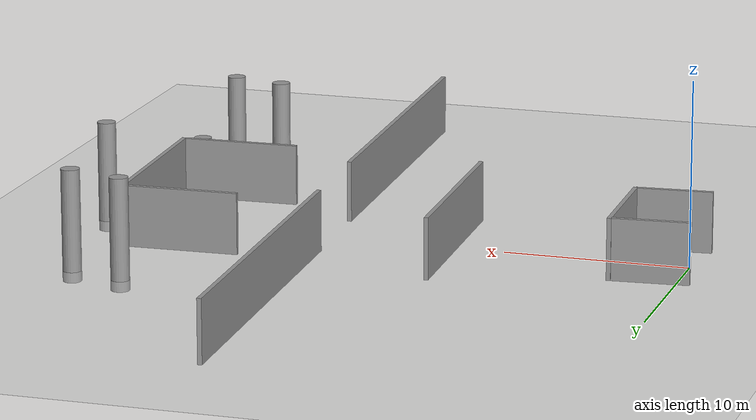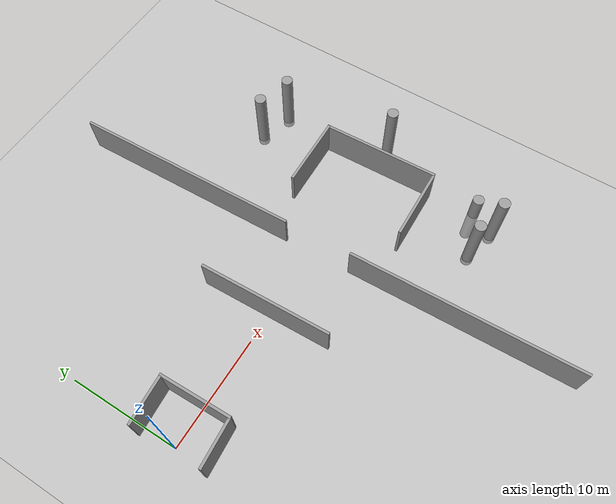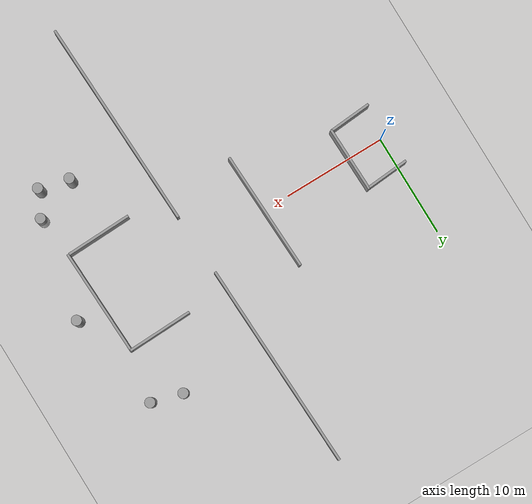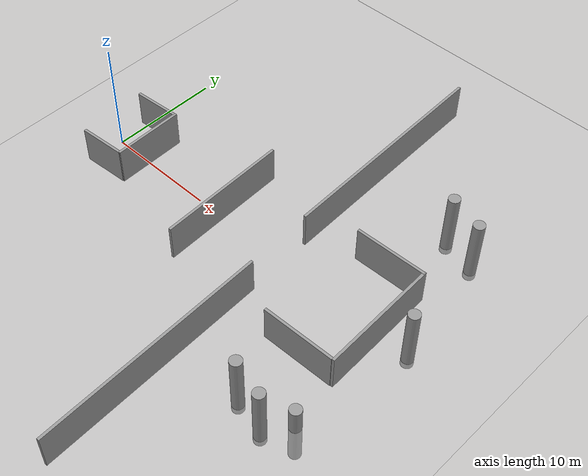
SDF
<sdf version="1.6">
 <world name="default">
  <model name="ground_plane">
   <static>1</static>
   <link name="link">
    <collision name="collision">
     <geometry><plane><normal>0 0 1</normal><size>200 200</size></plane></geometry>
     <surface><friction><ode><mu>100</mu><mu2>50</mu2></ode></friction></surface>
    </collision>
    <visual name="visual">
     <cast_shadows>0</cast_shadows>
     <geometry><plane><normal>0 0 1</normal><size>200 200</size></plane></geometry>
     <material>
      <script><uri>file://media/materials/scripts/gazebo.material</uri><name>Gazebo/Grey</name></script>
     </material>
    </visual>
    <gravity>0</gravity>
   </link>
  </model>
  <model name="unit_box_0_0_clone_0">
   <static>true</static>
   <pose>12.6891 0.242726 1.66667 -0.000226 9e-06 0.034068</pose>
   <link name="link">
    <inertial>
     <mass>1</mass>
     <inertia>
      <ixx>0.166667</ixx>
      <ixy>0</ixy>
      <ixz>0</ixz>
      <iyy>0.166667</iyy>
      <iyz>0</iyz>
      <izz>0.166667</izz>
     </inertia>
    </inertial>
    <collision name="collision">
     <geometry><box><size>0.237691 11.7788 3.33454</size></box></geometry>
     <surface><contact><collide_without_contact>1</collide_without_contact></contact></surface>
    </collision>
    <visual name="visual">
     <geometry><box><size>0.237691 11.7788 3.33454</size></box></geometry>
     <material>
      <script><name>Gazebo/Grey</name><uri>file://media/materials/scripts/gazebo.material</uri></script>
     </material>
    </visual>
    <gravity>0</gravity>
   </link>
  </model>
  <model name="unit_cylinder_0_clone_14">
   <static>true</static>
   <pose>30.4731 -9.99792 -0.733565 0 -0 0.001073</pose>
   <link name="link">
    <inertial>
     <mass>1</mass>
     <inertia><ixx>0.145833</ixx><ixy>0</ixy><ixz>0</ixz><iyy>0.145833</iyy><iyz>0</iyz><izz>0.125</izz></inertia>
    </inertial>
    <collision name="collision">
     <geometry><cylinder><radius>0.5</radius><length>6.03342</length></cylinder></geometry>
     <surface><contact><collide_without_contact>1</collide_without_contact></contact></surface>
    </collision>
    <visual name="visual">
     <geometry><cylinder><radius>0.5</radius><length>6.03342</length></cylinder></geometry>
     <material>
      <script><name>Gazebo/Grey</name><uri>file://media/materials/scripts/gazebo.material</uri></script>
     </material>
    </visual>
    <gravity>0</gravity>
   </link>
  </model>
  <model name="unit_box_0_0_clone_0_clone_clone">
   <static>true</static>
   <pose>20.034 -13.669 1.66667 -0.000226 9e-06 0.034061</pose>
   <link name="link">
    <inertial>
     <mass>1</mass>
     <inertia>
      <ixx>0.166667</ixx>
      <ixy>0</ixy>
      <ixz>0</ixz>
      <iyy>0.166667</iyy>
      <iyz>0</iyz>
      <izz>0.166667</izz>
     </inertia>
    </inertial>
    <collision name="collision">
     <geometry><box><size>0.237691 20.4927 3.33454</size></box></geometry>
     <surface><contact><collide_without_contact>1</collide_without_contact></contact></surface>
    </collision>
    <visual name="visual">
     <geometry><box><size>0.237691 20.4927 3.33454</size></box></geometry>
     <material>
      <script><name>Gazebo/Grey</name><uri>file://media/materials/scripts/gazebo.material</uri></script>
     </material>
    </visual>
    <gravity>0</gravity>
   </link>
  </model>
  <model name="unit_box_0_0_clone_0_clone_clone_0_clone">
   <static>true</static>
   <pose>29.8508 -0.508676 1.66667 -0.000226 9e-06 0.034061</pose>
   <link name="link">
    <inertial>
     <mass>1</mass>
     <inertia>
      <ixx>0.166667</ixx>
      <ixy>0</ixy>
      <ixz>0</ixz>
      <iyy>0.166667</iyy>
      <iyz>0</iyz>
      <izz>0.166667</izz>
     </inertia>
    </inertial>
    <collision name="collision">
     <geometry><box><size>0.237691 10.584 3.33454</size></box></geometry>
     <surface><contact><collide_without_contact>1</collide_without_contact></contact></surface>
    </collision>
    <visual name="visual">
     <geometry><box><size>0.237691 10.584 3.33454</size></box></geometry>
     <material>
      <script><name>Gazebo/Grey</name><uri>file://media/materials/scripts/gazebo.material</uri></script>
     </material>
    </visual>
    <gravity>0</gravity>
   </link>
  </model>
  <model name="unit_box_0_0_clone_0_clone_clone_0_clone_0">
   <static>true</static>
   <pose>26.7123 -5.83003 1.66685 8e-06 0.000226 1.60099</pose>
   <link name="link">
    <inertial>
     <mass>1</mass>
     <inertia>
      <ixx>0.166667</ixx>
      <ixy>0</ixy>
      <ixz>0</ixz>
      <iyy>0.166667</iyy>
      <iyz>0</iyz>
      <izz>0.166667</izz>
     </inertia>
    </inertial>
    <collision name="collision">
     <geometry><box><size>0.237691 6.4029 3.33454</size></box></geometry>
     <surface><contact><collide_without_contact>1</collide_without_contact></contact></surface>
    </collision>
    <visual name="visual">
     <geometry><box><size>0.237691 6.4029 3.33454</size></box></geometry>
     <material>
      <script><name>Gazebo/Grey</name><uri>file://media/materials/scripts/gazebo.material</uri></script>
     </material>
    </visual>
    <gravity>0</gravity>
   </link>
  </model>
  <model name="unit_box_0_0_clone_0_clone_clone_0_clone_clone">
   <static>true</static>
   <pose>3.56833 0.275438 1.66667 -0.000226 6e-06 0.022264</pose>
   <link name="link">
    <inertial>
     <mass>1</mass>
     <inertia>
      <ixx>0.166667</ixx>
      <ixy>0</ixy>
      <ixz>0</ixz>
      <iyy>0.166667</iyy>
      <iyz>0</iyz>
      <izz>0.166667</izz>
     </inertia>
    </inertial>
    <collision name="collision">
     <geometry><box><size>0.237691 6.40032 3.33454</size></box></geometry>
     <surface><contact><collide_without_contact>1</collide_without_contact></contact></surface>
    </collision>
    <visual name="visual">
     <geometry><box><size>0.237691 6.40032 3.33454</size></box></geometry>
     <material>
      <script><name>Gazebo/Grey</name><uri>file://media/materials/scripts/gazebo.material</uri></script>
     </material>
    </visual>
    <gravity>0</gravity>
   </link>
  </model>
  <model name="unit_cylinder_0_clone_14_clone_9">
   <static>true</static>
   <pose>30.626 9.6448 2.40172 0 -0 0.001073</pose>
   <link name="link">
    <inertial>
     <mass>1</mass>
     <inertia><ixx>0.145833</ixx><ixy>0</ixy><ixz>0</ixz><iyy>0.145833</iyy><iyz>0</iyz><izz>0.125</izz></inertia>
    </inertial>
    <collision name="collision">
     <geometry><cylinder><radius>0.5</radius><length>6.03342</length></cylinder></geometry>
     <surface><contact><collide_without_contact>1</collide_without_contact></contact></surface>
    </collision>
    <visual name="visual">
     <geometry><cylinder><radius>0.5</radius><length>6.03342</length></cylinder></geometry>
     <material>
      <script><name>Gazebo/Grey</name><uri>file://media/materials/scripts/gazebo.material</uri></script>
     </material>
    </visual>
    <gravity>0</gravity>
   </link>
  </model>
  <model name="unit_cylinder_0_clone_14_clone_10">
   <static>true</static>
   <pose>27.6346 10.4863 2.40172 0 -0 0.001073</pose>
   <link name="link">
    <inertial>
     <mass>1</mass>
     <inertia><ixx>0.145833</ixx><ixy>0</ixy><ixz>0</ixz><iyy>0.145833</iyy><iyz>0</iyz><izz>0.125</izz></inertia>
    </inertial>
    <collision name="collision">
     <geometry><cylinder><radius>0.5</radius><length>6.03342</length></cylinder></geometry>
     <surface><contact><collide_without_contact>1</collide_without_contact></contact></surface>
    </collision>
    <visual name="visual">
     <geometry><cylinder><radius>0.5</radius><length>6.03342</length></cylinder></geometry>
     <material>
      <script><name>Gazebo/Grey</name><uri>file://media/materials/scripts/gazebo.material</uri></script>
     </material>
    </visual>
    <gravity>0</gravity>
   </link>
  </model>
  <model name="unit_cylinder_0_clone_14_clone_13">
   <static>true</static>
   <pose>29.184 -12.1897 2.40172 0 -0 0.001073</pose>
   <link name="link">
    <inertial>
     <mass>1</mass>
     <inertia><ixx>0.145833</ixx><ixy>0</ixy><ixz>0</ixz><iyy>0.145833</iyy><iyz>0</iyz><izz>0.125</izz></inertia>
    </inertial>
    <collision name="collision">
     <geometry><cylinder><radius>0.5</radius><length>6.03342</length></cylinder></geometry>
     <surface><contact><collide_without_contact>1</collide_without_contact></contact></surface>
    </collision>
    <visual name="visual">
     <geometry><cylinder><radius>0.5</radius><length>6.03342</length></cylinder></geometry>
     <material>
      <script><name>Gazebo/Grey</name><uri>file://media/materials/scripts/gazebo.material</uri></script>
     </material>
    </visual>
    <gravity>0</gravity>
   </link>
  </model>
  <model name="unit_cylinder_0_clone_14_clone_14">
   <static>true</static>
   <pose>26.2784 -11.4682 2.40172 0 -0 0.001073</pose>
   <link name="link">
    <inertial>
     <mass>1</mass>
     <inertia><ixx>0.145833</ixx><ixy>0</ixy><ixz>0</ixz><iyy>0.145833</iyy><iyz>0</iyz><izz>0.125</izz></inertia>
    </inertial>
    <collision name="collision">
     <geometry><cylinder><radius>0.5</radius><length>6.03342</length></cylinder></geometry>
     <surface><contact><collide_without_contact>1</collide_without_contact></contact></surface>
    </collision>
    <visual name="visual">
     <geometry><cylinder><radius>0.5</radius><length>6.03342</length></cylinder></geometry>
     <material>
      <script><name>Gazebo/Grey</name><uri>file://media/materials/scripts/gazebo.material</uri></script>
     </material>
    </visual>
    <gravity>0</gravity>
   </link>
  </model>
  <model name="unit_cylinder_0_clone_14_clone_16">
   <static>true</static>
   <pose>32.4082 -0.136858 2.40172 0 -0 0.001073</pose>
   <link name="link">
    <inertial>
     <mass>1</mass>
     <inertia><ixx>0.145833</ixx><ixy>0</ixy><ixz>0</ixz><iyy>0.145833</iyy><iyz>0</iyz><izz>0.125</izz></inertia>
    </inertial>
    <collision name="collision">
     <geometry><cylinder><radius>0.5</radius><length>6.03342</length></cylinder></geometry>
     <surface><contact><collide_without_contact>1</collide_without_contact></contact></surface>
    </collision>
    <visual name="visual">
     <geometry><cylinder><radius>0.5</radius><length>6.03342</length></cylinder></geometry>
     <material>
      <script><name>Gazebo/Grey</name><uri>file://media/materials/scripts/gazebo.material</uri></script>
     </material>
    </visual>
    <gravity>0</gravity>
   </link>
  </model>
  <model name="unit_box_0_0_clone_0_clone_clone_0_clone_0_clone">
   <static>true</static>
   <pose>26.54 4.55469 1.66685 8e-06 0.000226 1.60099</pose>
   <link name="link">
    <inertial>
     <mass>1</mass>
     <inertia>
      <ixx>0.166667</ixx>
      <ixy>0</ixy>
      <ixz>0</ixz>
      <iyy>0.166667</iyy>
      <iyz>0</iyz>
      <izz>0.166667</izz>
     </inertia>
    </inertial>
    <collision name="collision">
     <geometry><box><size>0.237691 6.4029 3.33454</size></box></geometry>
     <surface><contact><collide_without_contact>1</collide_without_contact></contact></surface>
    </collision>
    <visual name="visual">
     <geometry><box><size>0.237691 6.4029 3.33454</size></box></geometry>
     <material>
      <script><name>Gazebo/Grey</name><uri>file://media/materials/scripts/gazebo.material</uri></script>
     </material>
    </visual>
    <gravity>0</gravity>
   </link>
  </model>
  <model name="unit_box_0_0_clone_0_clone_clone_clone">
   <static>true</static>
   <pose>19.0842 12.813 1.66667 -0.000226 9e-06 0.034061</pose>
   <link name="link">
    <inertial>
     <mass>1</mass>
     <inertia>
      <ixx>0.166667</ixx>
      <ixy>0</ixy>
      <ixz>0</ixz>
      <iyy>0.166667</iyy>
      <iyz>0</iyz>
      <izz>0.166667</izz>
     </inertia>
    </inertial>
    <collision name="collision">
     <geometry><box><size>0.237691 20.4927 3.33454</size></box></geometry>
     <surface><contact><collide_without_contact>1</collide_without_contact></contact></surface>
    </collision>
    <visual name="visual">
     <geometry><box><size>0.237691 20.4927 3.33454</size></box></geometry>
     <material>
      <script><name>Gazebo/Grey</name><uri>file://media/materials/scripts/gazebo.material</uri></script>
     </material>
    </visual>
    <gravity>0</gravity>
   </link>
  </model>
  <model name="unit_box_0_0_clone_0_clone_clone_0_clone_clone_clone">
   <static>true</static>
   <pose>1.35618 3.17894 1.66667 1.8e-05 0.000225 1.64588</pose>
   <link name="link">
    <inertial>
     <mass>1</mass>
     <inertia>
      <ixx>0.166667</ixx>
      <ixy>0</ixy>
      <ixz>0</ixz>
      <iyy>0.166667</iyy>
      <iyz>0</iyz>
      <izz>0.166667</izz>
     </inertia>
    </inertial>
    <collision name="collision">
     <geometry><box><size>0.237691 4.13417 3.33454</size></box></geometry>
     <surface><contact><collide_without_contact>1</collide_without_contact></contact></surface>
    </collision>
    <visual name="visual">
     <geometry><box><size>0.237691 4.13417 3.33454</size></box></geometry>
     <material>
      <script><name>Gazebo/Grey</name><uri>file://media/materials/scripts/gazebo.material</uri></script>
     </material>
    </visual>
    <gravity>0</gravity>
   </link>
  </model>
  <model name="unit_box_0_0_clone_0_clone_clone_0_clone_clone_clone_clone">
   <static>true</static>
   <pose>1.56834 -3.00868 1.66667 1.8e-05 0.000225 1.64588</pose>
   <link name="link">
    <inertial>
     <mass>1</mass>
     <inertia>
      <ixx>0.166667</ixx>
      <ixy>0</ixy>
      <ixz>0</ixz>
      <iyy>0.166667</iyy>
      <iyz>0</iyz>
      <izz>0.166667</izz>
     </inertia>
    </inertial>
    <collision name="collision">
     <geometry><box><size>0.237691 4.13417 3.33454</size></box></geometry>
     <surface><contact><collide_without_contact>1</collide_without_contact></contact></surface>
    </collision>
    <visual name="visual">
     <geometry><box><size>0.237691 4.13417 3.33454</size></box></geometry>
     <material>
      <script><name>Gazebo/Grey</name><uri>file://media/materials/scripts/gazebo.material</uri></script>
     </material>
    </visual>
    <gravity>0</gravity>
   </link>
  </model>
 </world>
</sdf>
